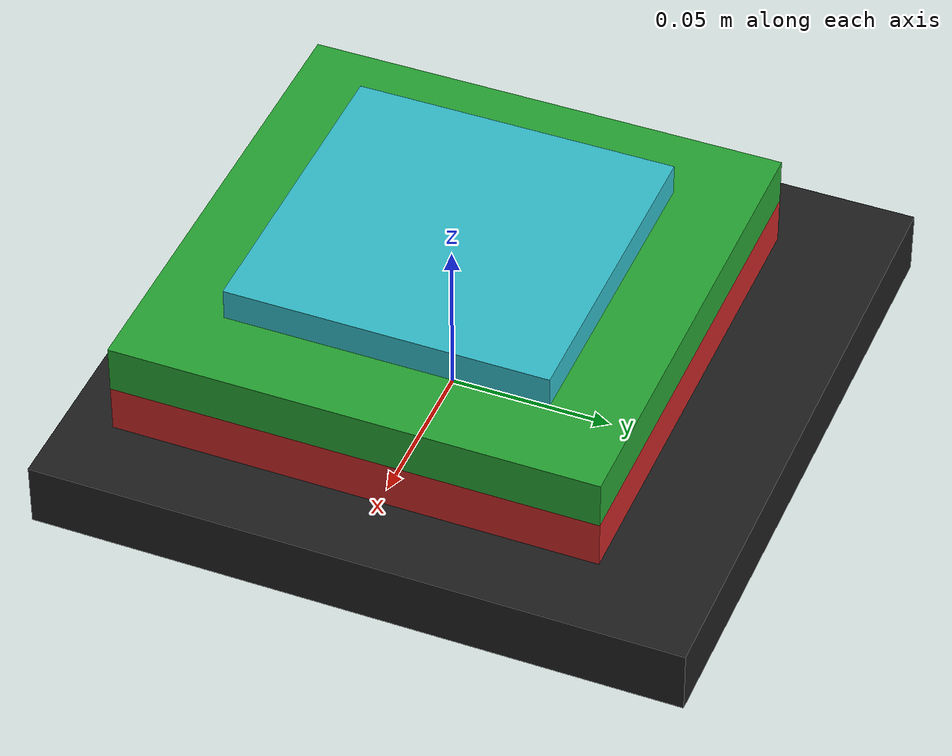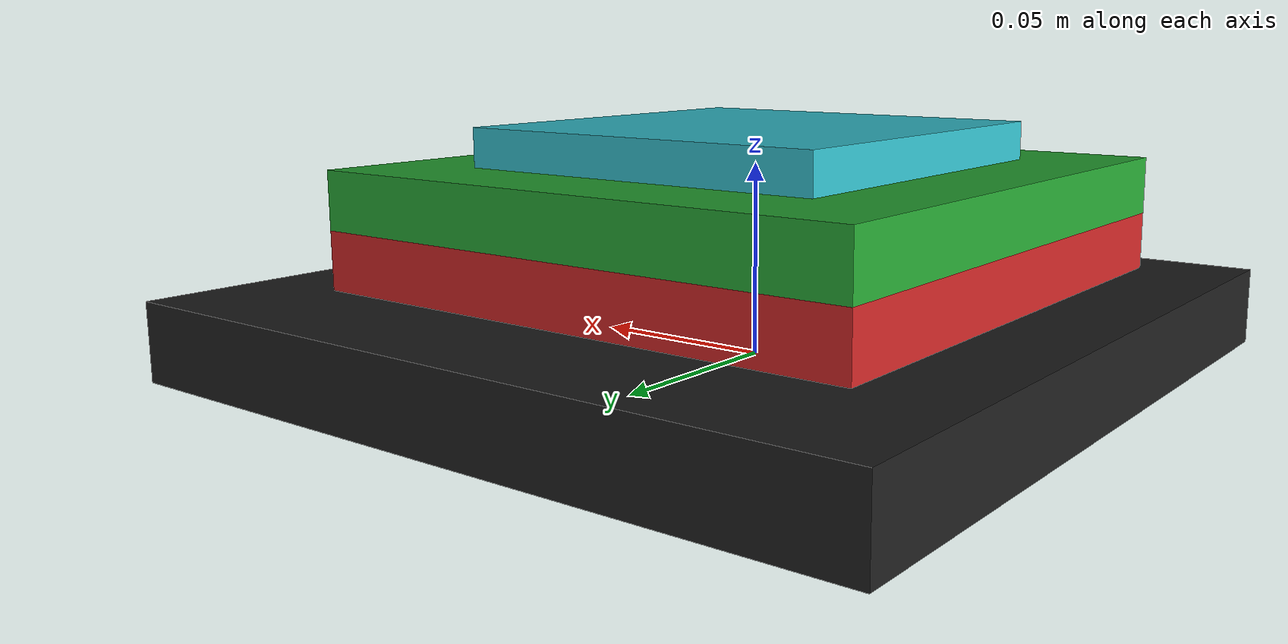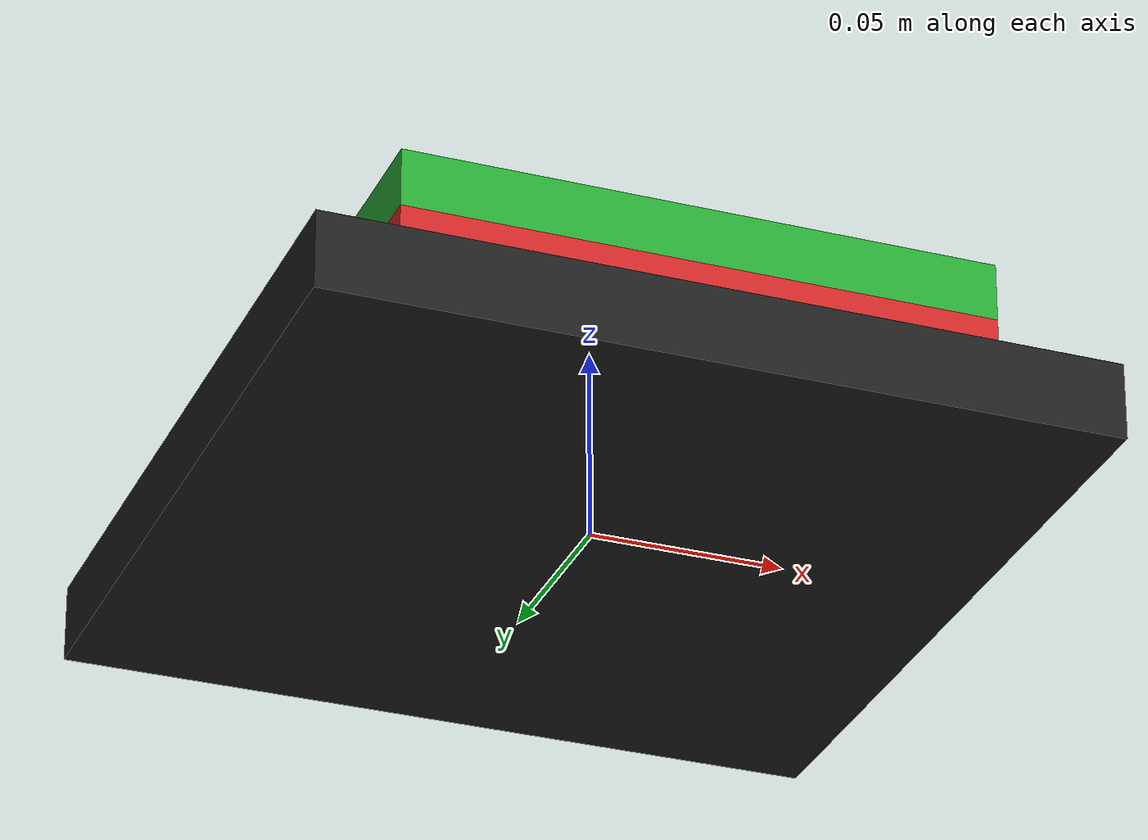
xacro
<robot xmlns:xacro="http://www.ros.org/wiki/xacro" name="stage">
    <xacro:include filename="materials.xacro" />
    <xacro:include filename="inertials.xacro" />

    <xacro:include filename="stage_core.xacro" />
    <xacro:include filename="stage.ros2_control.xacro" />
    <xacro:include filename="gz_plugins.xacro" />
</robot>

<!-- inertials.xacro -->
<robot xmlns:xacro="http://www.ros.org/wiki/xacro">

    <xacro:macro name="box_inertial" params="lx ly lz m o_xyz o_rpy">
        <inertial>
            <origin xyz="${o_xyz}" rpy="${o_rpy}" />
            <mass value="${m}" />
            <inertia ixx="${m/12 * (ly**2 + lz**2)}" ixy="0.0" ixz="0.0"
                iyy="${m/12 * (lx**2 + lz**2)}" iyz="0.0" izz="${m/12 * (lx**2 + lz**2)}" />
        </inertial>
    </xacro:macro>

</robot>

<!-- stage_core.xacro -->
<robot xmlns:xacro="http://www.ros.org/wiki/xacro">
    <!-- Properties -->
    <xacro:property name="base_lx" value="0.2" />
    <xacro:property name="base_ly" value="0.2" />
    <xacro:property name="base_lz" value="0.02" />
    <xacro:property name="base_mass" value="10" />

    <xacro:property name="x_stage_lx" value="0.15" />
    <xacro:property name="x_stage_ly" value="0.15" />
    <xacro:property name="x_stage_lz" value="0.015" />
    <xacro:property name="x_stage_mass" value="0.1" />
    <xacro:property name="x_stage_lower" value="0" />
    <xacro:property name="x_stage_upper" value="0.025" />

    <xacro:property name="y_stage_lx" value="0.15" />
    <xacro:property name="y_stage_ly" value="0.15" />
    <xacro:property name="y_stage_lz" value="0.015" />
    <xacro:property name="y_stage_mass" value="0.1" />
    <xacro:property name="y_stage_lower" value="0" />
    <xacro:property name="y_stage_upper" value="0.025" />

    <xacro:property name="z_stage_lx" value="0.1" />
    <xacro:property name="z_stage_ly" value="0.1" />
    <xacro:property name="z_stage_lz" value="0.01" />
    <xacro:property name="z_stage_mass" value="0.05" />
    <xacro:property name="z_stage_lower" value="0" />
    <xacro:property name="z_stage_upper" value="0.025" />

    <xacro:property name="stage_effort" value="100" />
    <xacro:property name="stage_vel" value="0.005" />

    <!-- Base -->
    <link name="base_footprint" />
    <link name="base_link">

        <visual>
            <origin xyz="0 ${base_lz/2} 0" rpy="0 0 0" />
            <geometry>
                <box size="${base_lx} ${base_ly} ${base_lz}" />
            </geometry>
            <material name="black" />
        </visual>

        <collision>
            <origin xyz="0 ${base_lz/2} 0" rpy="0 0 0" />
            <geometry>
                <box size="${base_lx} ${base_ly} ${base_lz}" />
            </geometry>
        </collision>

        <xacro:box_inertial lx="${base_lx}" ly="${base_ly}" lz="${base_lz}" m="${base_mass}"
            o_xyz="0 ${base_lz/2} 0" o_rpy="0 0 0" />

    </link>

    <joint name="footprint_base_joint" type="fixed">
        <origin xyz="0 0 ${base_lz/2}" rpy="0 0 0" />
        <parent link="base_footprint" />
        <child link="base_link" />
    </joint>

    <!-- X Stage -->
    <link name="x_stage_link">

        <visual>
            <origin xyz="0 0 ${x_stage_lz/2}" rpy="0 0 0" />
            <geometry>
                <box size="${x_stage_lx} ${x_stage_ly} ${x_stage_lz}" />
            </geometry>

            <material name="red" />
        </visual>

        <collision>
            <origin xyz="0 0 ${x_stage_lz/2}" rpy="0 0 0" />
            <geometry>
                <box size="${x_stage_lx} ${x_stage_ly} ${x_stage_lz}" />
            </geometry>
        </collision>

        <xacro:box_inertial lx="${x_stage_lx}" ly="${x_stage_ly}" lz="${x_stage_lz}"
            m="${x_stage_mass}"
            o_xyz="0 0 ${x_stage_lz/2}" o_rpy="0 0 0" />

    </link>

    <joint name="base_x_stage_joint" type="prismatic">
        <origin xyz="0 0 ${base_lz/2}" rpy="0 0 0" />
        <parent link="base_link" />
        <child link="x_stage_link" />
        <axis xyz="1 0 0" />
        <limit lower="${x_stage_lower}" upper="${x_stage_upper}" effort="${stage_effort}"
            velocity="${stage_vel}" />
    </joint>

    <!-- Y Stage -->
    <link name="y_stage_link">

        <visual>
            <origin xyz="0 0 ${y_stage_lz/2}" rpy="0 0 0" />
            <geometry>
                <box size="${y_stage_lx} ${y_stage_ly} ${y_stage_lz}" />
            </geometry>
            <material name="green" />
        </visual>

        <collision>
            <origin xyz="0 0 ${y_stage_lz/2}" rpy="0 0 0" />
            <geometry>
                <box size="${y_stage_lx} ${y_stage_ly} ${y_stage_lz}" />
            </geometry>
        </collision>

        <xacro:box_inertial lx="${y_stage_lx}" ly="${y_stage_ly}" lz="${y_stage_lz}"
            m="${y_stage_mass}"
            o_xyz="0 0 ${y_stage_lz/2}" o_rpy="0 0 0" />

    </link>

    <joint name="x_y_stage_joint" type="prismatic">
        <origin xyz="0 0 ${x_stage_lz}" rpy="0 0 0" />
        <parent link="x_stage_link" />
        <child link="y_stage_link" />
        <axis xyz="0 1 0" />
        <limit lower="${y_stage_lower}" upper="${y_stage_upper}" effort="${stage_effort}"
            velocity="${stage_vel}" />
    </joint>

    <!-- Z Stage -->
    <link name="z_stage_link">

        <visual>
            <origin xyz="0 0 ${z_stage_lz/2}" rpy="0 0 0" />
            <geometry>
                <box size="${z_stage_lx} ${z_stage_ly} ${z_stage_lz}" />
            </geometry>
            <material name="cyan" />
        </visual>

        <collision>
            <origin xyz="0 0 ${z_stage_lz/2}" rpy="0 0 0" />
            <geometry>
                <box size="${z_stage_lx} ${z_stage_ly} ${z_stage_lz}" />
            </geometry>
        </collision>

        <xacro:box_inertial lx="${z_stage_lx}" ly="${z_stage_ly}" lz="${z_stage_lz}"
            m="${z_stage_mass}"
            o_xyz="0 0 ${z_stage_lz/2}" o_rpy="0 0 0" />

    </link>

    <joint name="y_z_stage_joint" type="prismatic">
        <origin xyz="0 0 ${y_stage_lz}" rpy="0 0 0" />
        <parent link="y_stage_link" />
        <child link="z_stage_link" />
        <axis xyz="0 0 1" />
        <limit lower="${z_stage_lower}" upper="${z_stage_upper}" effort="${stage_effort}"
            velocity="${stage_vel}" />
    </joint>

</robot>
